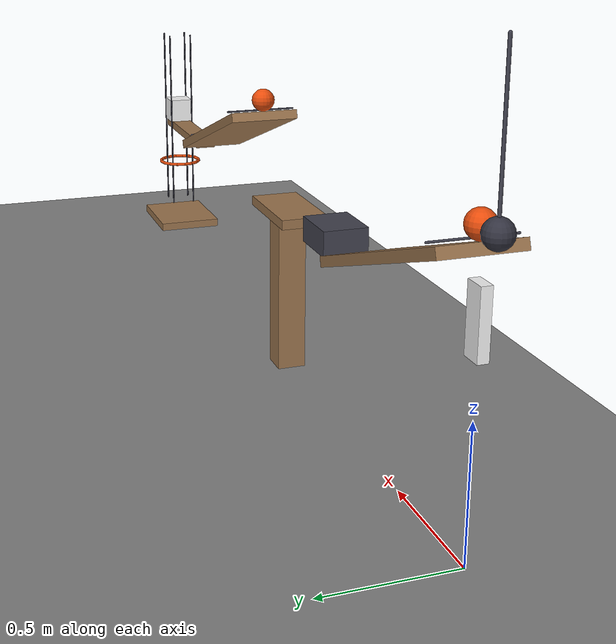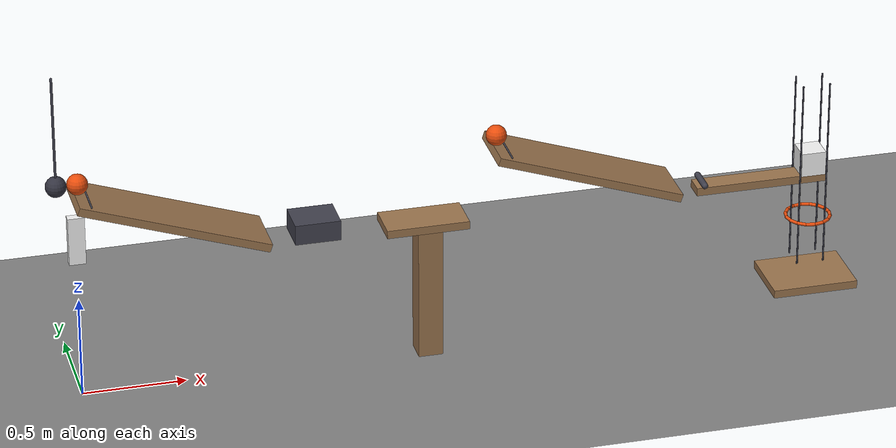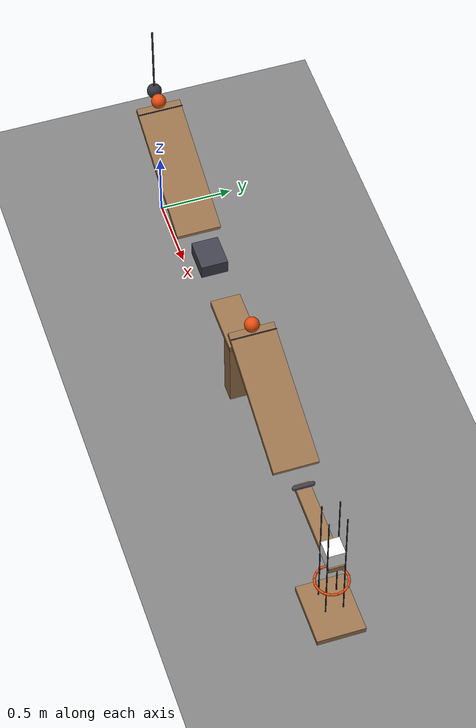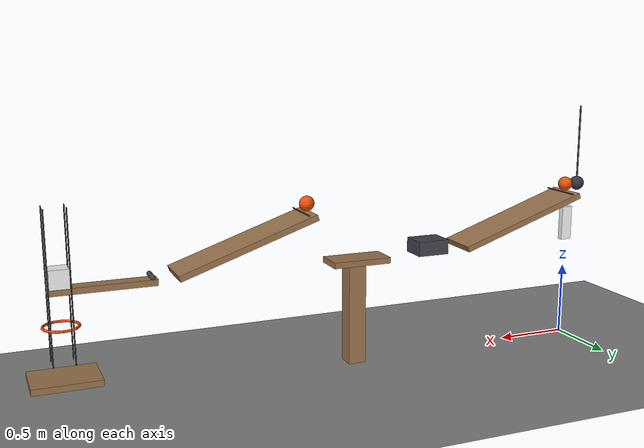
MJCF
<mujoco model="elevated_pendulum_cascade">
  <compiler angle="radian"/>
  <option timestep="0.002"/>
  <worldbody>
    <geom name="floor" type="plane" size="8 8 0.1" friction="0.68 0.005 0.0001"/>
    <body name="ramp1">
      <geom name="ramp1" type="box" pos="0.44261 0 0.885734" size="0.475 0.15 0.02" euler="0 0.331612 0" friction="0.68 0.005 0.0001" solref="0.01 1" rgba="0.6 0.45 0.3 1"/>
    </body>
    <body name="ramp1 release lip">
      <geom name="ramp1 release lip" type="capsule" size="0.004" fromto="0.055 0.15 1.055 0.055 -0.15 1.055" friction="0.68 0.005 0.0001" solref="0.01 1" rgba="0.25 0.25 0.3 1"/>
    </body>
    <body name="ball1" pos="0.016278 0 1.10657">
      <freejoint/>
      <geom name="ball1" type="sphere" pos="0 0 0" size="0.05" mass="0.2" condim="6" friction="0.68 0.005 0.0001" solref="0.01 1" rgba="0.9 0.3 0.05 1"/>
    </body>
    <body name="pendulum1" pos="-0.083722 0 1.65657">
      <joint name="pendulum1_hinge" type="hinge" pos="0 0 0" axis="0 1 0" limited="true" range="-1.39626 0.959931" damping="0.04"/>
      <geom name="pendulum1" type="sphere" pos="0 0 -0.55" size="0.05" mass="0.35" friction="0.68 0.005 0.0001" solref="0.01 1" rgba="0.2 0.2 0.25 1"/>
      <geom name="pendulum1 rod" type="capsule" size="0.006" fromto="0 0 0 0 0 -0.5" mass="0.05" friction="0.68 0.005 0.0001" solref="0.01 1" rgba="0.25 0.25 0.3 1"/>
    </body>
    <body name="cart1" pos="1.12824 100 0.75">
      <joint name="cart1_guide_approximation" type="hinge" pos="0 0 0" axis="0 0 1" limited="true" range="0 0.00400001" damping="2000"/>
      <geom name="cart1" type="box" pos="0 -100 0" size="0.11 0.09 0.05" mass="0.5" friction="0.68 0.005 0.0001" solref="0.01 1" rgba="0.25 0.25 0.3 1"/>
    </body>
    <body name="domino support">
      <geom name="domino support" type="box" pos="1.67824 0 0.35" size="0.06 0.06 0.35" friction="0.68 0.005 0.0001" solref="0.01 1" rgba="0.6 0.45 0.3 1"/>
    </body>
    <body name="domino1" pos="0 0 0.82">
      <freejoint/>
      <geom name="domino1" type="box" pos="0 0 0" size="0.04 0.02 0.12" mass="0.25" friction="0.68 0.005 0.0001" solref="0.01 1" rgba="0.95 0.95 0.95 1"/>
    </body>
    <body name="flap1" pos="1.85824 0 0.7">
      <joint name="flap1_hinge" type="hinge" pos="0 0 0" axis="0 1 0" limited="true" range="1.5708 2.70526" damping="0.04"/>
      <geom name="flap1" type="box" pos="-0.2 0 0" size="0.2 0.1 0.02" mass="0.3" friction="0.68 0.005 0.0001" solref="0.01 1" rgba="0.6 0.45 0.3 1"/>
    </body>
    <body name="ramp2">
      <geom name="ramp2" type="box" pos="2.43861 0 0.885734" size="0.475 0.15 0.02" euler="0 0.331612 0" friction="0.68 0.005 0.0001" solref="0.01 1" rgba="0.6 0.45 0.3 1"/>
    </body>
    <body name="ramp2 release lip">
      <geom name="ramp2 release lip" type="capsule" size="0.004" fromto="2.051 0.15 1.055 2.051 -0.15 1.055" friction="0.68 0.005 0.0001" solref="0.01 1" rgba="0.25 0.25 0.3 1"/>
    </body>
    <body name="ball2" pos="2.01228 0 1.10657">
      <freejoint/>
      <geom name="ball2" type="sphere" pos="0 0 0" size="0.05" mass="0.2" condim="6" friction="0.68 0.005 0.0001" solref="0.01 1" rgba="0.9 0.3 0.05 1"/>
    </body>
    <body name="seesaw1" pos="3.31924 0 0.7">
      <joint name="seesaw1_hinge" type="hinge" pos="0 0 0" axis="0 1 0" limited="true" range="-0.698132 0" stiffness="0.54" springref="-1.5708" damping="0.04"/>
      <geom name="seesaw1" type="box" pos="0 0 0" size="0.325 0.05 0.02" mass="0.55" friction="0.68 0.005 0.0001" solref="0.01 1" rgba="0.6 0.45 0.3 1"/>
      <geom name="seesaw catch lip" type="capsule" size="0.015" fromto="-0.29 0.06 0.035 -0.29 -0.06 0.035" mass="0.001" friction="0.68 0.005 0.0001" solref="0.01 1" rgba="0.25 0.25 0.3 1"/>
    </body>
    <body name="block1" pos="3.57424 0 0.78">
      <freejoint/>
      <geom name="block1" type="box" pos="0 0 0" size="0.06 0.06 0.06" mass="0.35" friction="0.68 0.005 0.0001" solref="0.01 1" rgba="0.95 0.95 0.95 1"/>
    </body>
    <body name="guide near left">
      <geom name="guide near left" type="capsule" size="0.004" fromto="3.50824 0.058 0.25 3.50824 0.058 1.2" friction="0.68 0.005 0.0001" solref="0.01 1" rgba="0.25 0.25 0.3 1"/>
    </body>
    <body name="guide near right">
      <geom name="guide near right" type="capsule" size="0.004" fromto="3.50824 -0.058 0.25 3.50824 -0.058 1.2" friction="0.68 0.005 0.0001" solref="0.01 1" rgba="0.25 0.25 0.3 1"/>
    </body>
    <body name="guide far left">
      <geom name="guide far left" type="capsule" size="0.004" fromto="3.64024 0.058 0.25 3.64024 0.058 1.2" friction="0.68 0.005 0.0001" solref="0.01 1" rgba="0.25 0.25 0.3 1"/>
    </body>
    <body name="guide far right">
      <geom name="guide far right" type="capsule" size="0.004" fromto="3.64024 -0.058 0.25 3.64024 -0.058 1.2" friction="0.68 0.005 0.0001" solref="0.01 1" rgba="0.25 0.25 0.3 1"/>
    </body>
    <body name="ring1">
      <geom name="ring1_00" type="capsule" size="0.008" fromto="3.68224 0 0.48 3.67402 0.0413298 0.48" friction="0.68 0.005 0.0001" solref="0.01 1" rgba="0.9 0.3 0.05 1"/>
      <geom name="ring1_01" type="capsule" size="0.008" fromto="3.67402 0.0413298 0.48 3.65061 0.0763675 0.48" friction="0.68 0.005 0.0001" solref="0.01 1" rgba="0.9 0.3 0.05 1"/>
      <geom name="ring1_02" type="capsule" size="0.008" fromto="3.65061 0.0763675 0.48 3.61557 0.099779 0.48" friction="0.68 0.005 0.0001" solref="0.01 1" rgba="0.9 0.3 0.05 1"/>
      <geom name="ring1_03" type="capsule" size="0.008" fromto="3.61557 0.099779 0.48 3.57424 0.108 0.48" friction="0.68 0.005 0.0001" solref="0.01 1" rgba="0.9 0.3 0.05 1"/>
      <geom name="ring1_04" type="capsule" size="0.008" fromto="3.57424 0.108 0.48 3.53291 0.099779 0.48" friction="0.68 0.005 0.0001" solref="0.01 1" rgba="0.9 0.3 0.05 1"/>
      <geom name="ring1_05" type="capsule" size="0.008" fromto="3.53291 0.099779 0.48 3.49788 0.0763675 0.48" friction="0.68 0.005 0.0001" solref="0.01 1" rgba="0.9 0.3 0.05 1"/>
      <geom name="ring1_06" type="capsule" size="0.008" fromto="3.49788 0.0763675 0.48 3.47446 0.0413298 0.48" friction="0.68 0.005 0.0001" solref="0.01 1" rgba="0.9 0.3 0.05 1"/>
      <geom name="ring1_07" type="capsule" size="0.008" fromto="3.47446 0.0413298 0.48 3.46624 1.32262e-17 0.48" friction="0.68 0.005 0.0001" solref="0.01 1" rgba="0.9 0.3 0.05 1"/>
      <geom name="ring1_08" type="capsule" size="0.008" fromto="3.46624 1.32262e-17 0.48 3.47446 -0.0413298 0.48" friction="0.68 0.005 0.0001" solref="0.01 1" rgba="0.9 0.3 0.05 1"/>
      <geom name="ring1_09" type="capsule" size="0.008" fromto="3.47446 -0.0413298 0.48 3.49788 -0.0763675 0.48" friction="0.68 0.005 0.0001" solref="0.01 1" rgba="0.9 0.3 0.05 1"/>
      <geom name="ring1_10" type="capsule" size="0.008" fromto="3.49788 -0.0763675 0.48 3.53291 -0.099779 0.48" friction="0.68 0.005 0.0001" solref="0.01 1" rgba="0.9 0.3 0.05 1"/>
      <geom name="ring1_11" type="capsule" size="0.008" fromto="3.53291 -0.099779 0.48 3.57424 -0.108 0.48" friction="0.68 0.005 0.0001" solref="0.01 1" rgba="0.9 0.3 0.05 1"/>
      <geom name="ring1_12" type="capsule" size="0.008" fromto="3.57424 -0.108 0.48 3.61557 -0.099779 0.48" friction="0.68 0.005 0.0001" solref="0.01 1" rgba="0.9 0.3 0.05 1"/>
      <geom name="ring1_13" type="capsule" size="0.008" fromto="3.61557 -0.099779 0.48 3.65061 -0.0763675 0.48" friction="0.68 0.005 0.0001" solref="0.01 1" rgba="0.9 0.3 0.05 1"/>
      <geom name="ring1_14" type="capsule" size="0.008" fromto="3.65061 -0.0763675 0.48 3.67402 -0.0413298 0.48" friction="0.68 0.005 0.0001" solref="0.01 1" rgba="0.9 0.3 0.05 1"/>
      <geom name="ring1_15" type="capsule" size="0.008" fromto="3.67402 -0.0413298 0.48 3.68224 -2.64524e-17 0.48" friction="0.68 0.005 0.0001" solref="0.01 1" rgba="0.9 0.3 0.05 1"/>
    </body>
    <body name="door1" pos="3.36424 0 0.15">
      <joint name="door1_hinge" type="hinge" pos="0 0 0" axis="0 1 0" limited="true" range="0 0.261799" damping="0.04"/>
      <geom name="door1" type="box" pos="0.21 0 0" size="0.21 0.16 0.02" mass="0.45" friction="0.68 0.005 0.0001" solref="0.01 1" rgba="0.6 0.45 0.3 1"/>
    </body>
  </worldbody>
  <keyframe>
    <key name="start" qpos="0.016278 0 1.10657 1 0 0 0 0.959931 0 0 0 0.82 1 0 0 0 1.5708 2.01228 0 1.10657 1 0 0 0 0 3.57424 0 0.78 1 0 0 0 0" qvel="0 0 0 0 0 0 0 0 0 0 0 0 0 0 0 0 0 0 0 0 0 0 0 0 0 0 0 0 0"/>
  </keyframe>
</mujoco>
